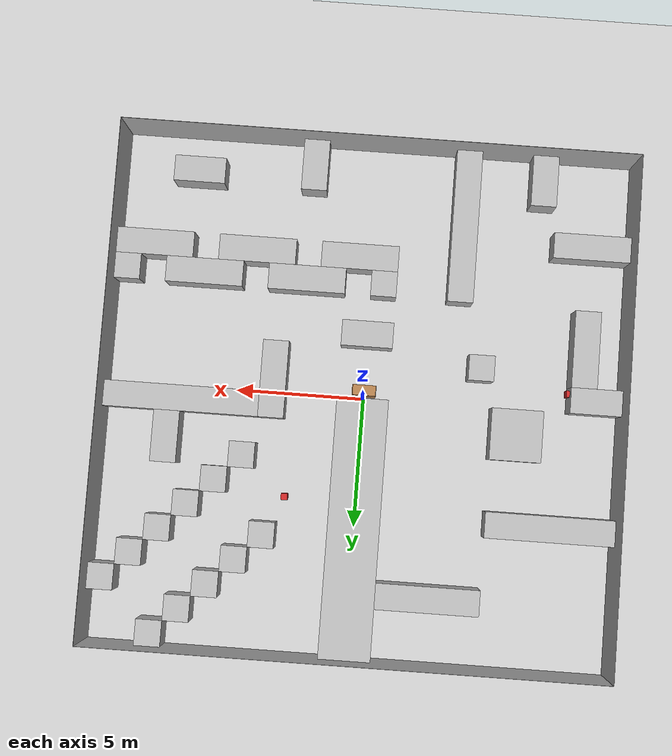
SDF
<sdf version="1.7">
 <world name="default">
  <physics type="ode">
   <max_step_size>0.001</max_step_size>
   <real_time_factor>1</real_time_factor>
   <real_time_update_rate>1000</real_time_update_rate>
  </physics>
  <light name="sun" type="directional">
   <pose>0 0 10 0 -0 0</pose>
   <diffuse>0.8 0.8 0.8 1</diffuse>
   <specular>0.2 0.2 0.2 1</specular>
   <attenuation>
    <range>1000</range>
    <constant>0.9</constant>
    <linear>0.01</linear>
    <quadratic>0.001</quadratic>
   </attenuation>
   <direction>-0.5 0.1 -0.9</direction>
   <spot><inner_angle>0</inner_angle><outer_angle>0</outer_angle><falloff>0</falloff></spot>
  </light>
  <gravity>0 0 -9.8</gravity>
  <magnetic_field>6e-06 2.3e-05 -4.2e-05</magnetic_field>
  <atmosphere type="adiabatic"/>
  <scene><ambient>0.4 0.4 0.4 1</ambient><background>0.7 0.7 0.7 1</background><shadows>1</shadows></scene>
  <model name="ground_plane">
   <static>1</static>
   <link name="link">
    <collision name="collision">
     <geometry><plane><normal>0 0 1</normal><size>100 100</size></plane></geometry>
    </collision>
    <visual name="visual">
     <geometry><plane><normal>0 0 1</normal><size>100 100</size></plane></geometry>
     <material>
      <ambient>0.8 0.8 0.8 1</ambient>
      <diffuse>0.8 0.8 0.8 1</diffuse>
      <specular>0.8 0.8 0.8 1</specular>
     </material>
     <plugin name="__default__" filename="__default__"/>
    </visual>
   </link>
   <plugin name="__default__" filename="__default__"/>
  </model>
  <include><uri>model://moving_box</uri><name>moving_box_1</name><pose>-8.0 -0.75 0.5 0 0 0</pose></include>
  <include><uri>model://moving_box_2</uri><name>moving_box_2</name><pose>2.75 4.0 0.5 0 0 0</pose></include>
  <model name="border">
   <pose>0 0 1 0 -0 0</pose>
   <static>1</static>
   <link name="wall1">
    <pose>-10.005 0 0 0 -0 0</pose>
    <collision name="wall1_collision"><geometry><box><size>0.01 20 2</size></box></geometry></collision>
    <visual name="wall1_visual"><geometry><box><size>0.01 20 2</size></box></geometry></visual>
    <static>1</static>
   </link>
   <link name="wall2">
    <pose>10.005 0 0 0 -0 0</pose>
    <collision name="wall2_collision"><geometry><box><size>0.01 20 2</size></box></geometry></collision>
    <visual name="wall2_visual"><geometry><box><size>0.01 20 2</size></box></geometry></visual>
    <static>1</static>
   </link>
   <link name="wall3">
    <pose>0 10.005 0 0 -0 0</pose>
    <collision name="wall3_collision"><geometry><box><size>20 0.01 2</size></box></geometry></collision>
    <visual name="wall3_visual"><geometry><box><size>20 0.01 2</size></box></geometry></visual>
    <static>1</static>
   </link>
   <link name="wall4">
    <pose>0 -10.005 0 0 -0 0</pose>
    <collision name="wall4_collision"><geometry><box><size>20 0.01 2</size></box></geometry></collision>
    <visual name="wall4_visual"><geometry><box><size>20 0.01 2</size></box></geometry></visual>
    <static>1</static>
   </link>
  </model>
  <model name="obstacles">
   <pose>0 0 0.5 0 -0 0</pose>
   <static>1</static>
   <link name="wall1">
    <pose>-6.5 -9 0 0 -0 0</pose>
    <collision name="wall1_collision"><geometry><box><size>1 2 1</size></box></geometry></collision>
    <visual name="wall1_visual"><geometry><box><size>1 2 1</size></box></geometry></visual>
    <static>1</static>
   </link>
   <link name="wall2">
    <pose>-8.5 -6.5 0 0 -0 0</pose>
    <collision name="wall2_collision"><geometry><box><size>3 1 1</size></box></geometry></collision>
    <visual name="wall2_visual"><geometry><box><size>3 1 1</size></box></geometry></visual>
    <static>1</static>
   </link>
   <link name="wall3">
    <pose>-3.5 -7 0 0 -0 0</pose>
    <collision name="wall3_collision"><geometry><box><size>1 6 1</size></box></geometry></collision>
    <visual name="wall3_visual"><geometry><box><size>1 6 1</size></box></geometry></visual>
    <static>1</static>
   </link>
   <link name="wall4">
    <pose>2.5 -9 0 0 -0 0</pose>
    <collision name="wall4_collision"><geometry><box><size>1 2 1</size></box></geometry></collision>
    <visual name="wall4_visual"><geometry><box><size>1 2 1</size></box></geometry></visual>
    <static>1</static>
   </link>
   <link name="wall5">
    <pose>7 -8.5 0 0 -0 0</pose>
    <collision name="wall5_collision"><geometry><box><size>2 1 1</size></box></geometry></collision>
    <visual name="wall5_visual"><geometry><box><size>2 1 1</size></box></geometry></visual>
    <static>1</static>
   </link>
   <link name="wall6">
    <pose>-9 -0.5 0 0 -0 0</pose>
    <collision name="wall6_collision"><geometry><box><size>2 1 1</size></box></geometry></collision>
    <visual name="wall6_visual"><geometry><box><size>2 1 1</size></box></geometry></visual>
    <static>1</static>
   </link>
   <link name="wall7">
    <pose>-8.5 -2.5 0 0 -0 0</pose>
    <collision name="wall7_collision"><geometry><box><size>1 3 1</size></box></geometry></collision>
    <visual name="wall7_visual"><geometry><box><size>1 3 1</size></box></geometry></visual>
    <static>1</static>
   </link>
   <link name="wall8">
    <pose>-4.5 -1.5 0 0 -0 0</pose>
    <collision name="wall8_collision"><geometry><box><size>1 1 1</size></box></geometry></collision>
    <visual name="wall8_visual"><geometry><box><size>1 1 1</size></box></geometry></visual>
    <static>1</static>
   </link>
   <link name="wall9">
    <pose>-6 1 0 0 -0 0</pose>
    <collision name="wall9_collision"><geometry><box><size>2 2 1</size></box></geometry></collision>
    <visual name="wall9_visual"><geometry><box><size>2 2 1</size></box></geometry></visual>
    <static>1</static>
   </link>
   <link name="wall10">
    <pose>-7.5 4.5 0 0 -0 0</pose>
    <collision name="wall10_collision"><geometry><box><size>5 1 1</size></box></geometry></collision>
    <visual name="wall10_visual"><geometry><box><size>5 1 1</size></box></geometry></visual>
    <static>1</static>
   </link>
   <link name="wall11">
    <pose>-3 7.5 0 0 -0 0</pose>
    <collision name="wall11_collision"><geometry><box><size>4 1 1</size></box></geometry></collision>
    <visual name="wall11_visual"><geometry><box><size>4 1 1</size></box></geometry></visual>
    <static>1</static>
   </link>
   <link name="wall12">
    <pose>0 5 0 0 -0 0</pose>
    <collision name="wall12_collision"><geometry><box><size>2 10 1</size></box></geometry></collision>
    <visual name="wall12_visual"><geometry><box><size>2 10 1</size></box></geometry></visual>
    <static>1</static>
   </link>
   <link name="wall13">
    <pose>0 -2.5 0 0 -0 0</pose>
    <collision name="wall13_collision"><geometry><box><size>2 1 1</size></box></geometry></collision>
    <visual name="wall13_visual"><geometry><box><size>2 1 1</size></box></geometry></visual>
    <static>1</static>
   </link>
   <link name="wall15">
    <pose>-0.5 -4.5 0 0 -0 0</pose>
    <collision name="wall15_collision"><geometry><box><size>1 1 1</size></box></geometry></collision>
    <visual name="wall15_visual"><geometry><box><size>1 1 1</size></box></geometry></visual>
    <static>1</static>
   </link>
   <link name="wall16">
    <pose>0.5 -5.5 0 0 -0 0</pose>
    <collision name="wall16_collision"><geometry><box><size>3 1 1</size></box></geometry></collision>
    <visual name="wall16_visual"><geometry><box><size>3 1 1</size></box></geometry></visual>
    <static>1</static>
   </link>
   <link name="wall17">
    <pose>2.5 -4.5 0 0 -0 0</pose>
    <collision name="wall17_collision"><geometry><box><size>3 1 1</size></box></geometry></collision>
    <visual name="wall17_visual"><geometry><box><size>3 1 1</size></box></geometry></visual>
    <static>1</static>
   </link>
   <link name="wall18">
    <pose>4.5 -5.5 0 0 -0 0</pose>
    <collision name="wall18_collision"><geometry><box><size>3 1 1</size></box></geometry></collision>
    <visual name="wall18_visual"><geometry><box><size>3 1 1</size></box></geometry></visual>
    <static>1</static>
   </link>
   <link name="wall19">
    <pose>6.5 -4.5 0 0 -0 0</pose>
    <collision name="wall19_collision"><geometry><box><size>3 1 1</size></box></geometry></collision>
    <visual name="wall19_visual"><geometry><box><size>3 1 1</size></box></geometry></visual>
    <static>1</static>
   </link>
   <link name="wall20">
    <pose>8.5 -5.5 0 0 -0 0</pose>
    <collision name="wall20_collision"><geometry><box><size>3 1 1</size></box></geometry></collision>
    <visual name="wall20_visual"><geometry><box><size>3 1 1</size></box></geometry></visual>
    <static>1</static>
   </link>
   <link name="wall21">
    <pose>9.5 -4.5 0 0 -0 0</pose>
    <collision name="wall21_collision"><geometry><box><size>1 1 1</size></box></geometry></collision>
    <visual name="wall21_visual"><geometry><box><size>1 1 1</size></box></geometry></visual>
    <static>1</static>
   </link>
   <link name="wall22">
    <pose>3.5 -0.5 0 0 -0 0</pose>
    <collision name="wall22_collision"><geometry><box><size>1 3 1</size></box></geometry></collision>
    <visual name="wall22_visual"><geometry><box><size>1 3 1</size></box></geometry></visual>
    <static>1</static>
   </link>
   <link name="wall23">
    <pose>7 0.5 0 0 -0 0</pose>
    <collision name="wall23_collision"><geometry><box><size>6 1 1</size></box></geometry></collision>
    <visual name="wall23_visual"><geometry><box><size>6 1 1</size></box></geometry></visual>
    <static>1</static>
   </link>
   <link name="wall24">
    <pose>7.5 2 0 0 -0 0</pose>
    <collision name="wall24_collision"><geometry><box><size>1 2 1</size></box></geometry></collision>
    <visual name="wall24_visual"><geometry><box><size>1 2 1</size></box></geometry></visual>
    <static>1</static>
   </link>
   <link name="wall27">
    <pose>3.5 5.5 0 0 -0 0</pose>
    <collision name="wall27_collision"><geometry><box><size>1 1 1</size></box></geometry></collision>
    <visual name="wall27_visual"><geometry><box><size>1 1 1</size></box></geometry></visual>
    <static>1</static>
   </link>
   <link name="wall28">
    <pose>4.5 6.5 0 0 -0 0</pose>
    <collision name="wall28_collision"><geometry><box><size>1 1 1</size></box></geometry></collision>
    <visual name="wall28_visual"><geometry><box><size>1 1 1</size></box></geometry></visual>
    <static>1</static>
   </link>
   <link name="wall29">
    <pose>5.5 7.5 0 0 -0 0</pose>
    <collision name="wall29_collision"><geometry><box><size>1 1 1</size></box></geometry></collision>
    <visual name="wall29_visual"><geometry><box><size>1 1 1</size></box></geometry></visual>
    <static>1</static>
   </link>
   <link name="wall30">
    <pose>6.5 8.5 0 0 -0 0</pose>
    <collision name="wall30_collision"><geometry><box><size>1 1 1</size></box></geometry></collision>
    <visual name="wall30_visual"><geometry><box><size>1 1 1</size></box></geometry></visual>
    <static>1</static>
   </link>
   <link name="wall31">
    <pose>7.5 9.5 0 0 -0 0</pose>
    <collision name="wall31_collision"><geometry><box><size>1 1 1</size></box></geometry></collision>
    <visual name="wall31_visual"><geometry><box><size>1 1 1</size></box></geometry></visual>
    <static>1</static>
   </link>
   <link name="wall32">
    <pose>4.5 2.5 0 0 -0 0</pose>
    <collision name="wall32_collision"><geometry><box><size>1 1 1</size></box></geometry></collision>
    <visual name="wall32_visual"><geometry><box><size>1 1 1</size></box></geometry></visual>
    <static>1</static>
   </link>
   <link name="wall33">
    <pose>5.5 3.5 0 0 -0 0</pose>
    <collision name="wall33_collision"><geometry><box><size>1 1 1</size></box></geometry></collision>
    <visual name="wall33_visual"><geometry><box><size>1 1 1</size></box></geometry></visual>
    <static>1</static>
   </link>
   <link name="wall34">
    <pose>6.5 4.5 0 0 -0 0</pose>
    <collision name="wall34_collision"><geometry><box><size>1 1 1</size></box></geometry></collision>
    <visual name="wall34_visual"><geometry><box><size>1 1 1</size></box></geometry></visual>
    <static>1</static>
   </link>
   <link name="wall35">
    <pose>7.5 5.5 0 0 -0 0</pose>
    <collision name="wall35_collision"><geometry><box><size>1 1 1</size></box></geometry></collision>
    <visual name="wall35_visual"><geometry><box><size>1 1 1</size></box></geometry></visual>
    <static>1</static>
   </link>
   <link name="wall36">
    <pose>8.5 6.5 0 0 -0 0</pose>
    <collision name="wall36_collision"><geometry><box><size>1 1 1</size></box></geometry></collision>
    <visual name="wall36_visual"><geometry><box><size>1 1 1</size></box></geometry></visual>
    <static>1</static>
   </link>
   <link name="wall37">
    <pose>9.5 7.5 0 0 -0 0</pose>
    <collision name="wall37_collision"><geometry><box><size>1 1 1</size></box></geometry></collision>
    <visual name="wall37_visual"><geometry><box><size>1 1 1</size></box></geometry></visual>
    <static>1</static>
   </link>
  </model>
  <audio><device>default</device></audio>
  <spherical_coordinates>
   <surface_model>EARTH_WGS84</surface_model>
   <latitude_deg>0</latitude_deg>
   <longitude_deg>0</longitude_deg>
   <elevation>0</elevation>
   <heading_deg>0</heading_deg>
  </spherical_coordinates>
  <model name="bookshelf">
   <static>1</static>
   <link name="link">
    <inertial><mass>1</mass></inertial>
    <collision name="back">
     <pose>0 0.005 0.6 0 -0 0</pose>
     <geometry><box><size>0.9 0.01 1.2</size></box></geometry>
    </collision>
    <visual name="visual1">
     <pose>0 0.005 0.6 0 -0 0</pose>
     <geometry><box><size>0.9 0.01 1.2</size></box></geometry>
     <material>
      <script><uri>file://media/materials/scripts/gazebo.material</uri><name>Gazebo/Wood</name></script>
     </material>
    </visual>
    <collision name="left_side">
     <pose>0.45 -0.195 0.6 0 -0 0</pose>
     <geometry><box><size>0.02 0.4 1.2</size></box></geometry>
    </collision>
    <visual name="visual2">
     <pose>0.45 -0.195 0.6 0 -0 0</pose>
     <geometry><box><size>0.02 0.4 1.2</size></box></geometry>
     <material>
      <script><uri>file://media/materials/scripts/gazebo.material</uri><name>Gazebo/Wood</name></script>
     </material>
    </visual>
    <collision name="right_side">
     <pose>-0.45 -0.195 0.6 0 -0 0</pose>
     <geometry><box><size>0.02 0.4 1.2</size></box></geometry>
    </collision>
    <visual name="visual3">
     <pose>-0.45 -0.195 0.6 0 -0 0</pose>
     <geometry><box><size>0.02 0.4 1.2</size></box></geometry>
     <material>
      <script><uri>file://media/materials/scripts/gazebo.material</uri><name>Gazebo/Wood</name></script>
     </material>
    </visual>
    <collision name="bottom">
     <pose>0 -0.195 0.03 0 -0 0</pose>
     <geometry><box><size>0.88 0.4 0.06</size></box></geometry>
    </collision>
    <visual name="visual4">
     <pose>0 -0.195 0.03 0 -0 0</pose>
     <geometry><box><size>0.88 0.4 0.06</size></box></geometry>
     <material>
      <script><uri>file://media/materials/scripts/gazebo.material</uri><name>Gazebo/Wood</name></script>
     </material>
    </visual>
    <collision name="top">
     <pose>0 -0.195 1.19 0 -0 0</pose>
     <geometry><box><size>0.88 0.4 0.02</size></box></geometry>
    </collision>
    <visual name="visual5">
     <pose>0 -0.195 1.19 0 -0 0</pose>
     <geometry><box><size>0.88 0.4 0.02</size></box></geometry>
     <material>
      <script><uri>file://media/materials/scripts/gazebo.material</uri><name>Gazebo/Wood</name></script>
     </material>
    </visual>
    <collision name="low_shelf">
     <pose>0 -0.195 0.43 0 -0 0</pose>
     <geometry><box><size>0.88 0.4 0.02</size></box></geometry>
    </collision>
    <visual name="visual6">
     <pose>0 -0.195 0.43 0 -0 0</pose>
     <geometry><box><size>0.88 0.4 0.02</size></box></geometry>
     <material>
      <script><uri>file://media/materials/scripts/gazebo.material</uri><name>Gazebo/Wood</name></script>
     </material>
    </visual>
    <collision name="high_shelf">
     <pose>0 -0.195 0.8 0 -0 0</pose>
     <geometry><box><size>0.88 0.4 0.02</size></box></geometry>
    </collision>
    <visual name="visual7">
     <pose>0 -0.195 0.8 0 -0 0</pose>
     <geometry><box><size>0.88 0.4 0.02</size></box></geometry>
     <material>
      <script><uri>file://media/materials/scripts/gazebo.material</uri><name>Gazebo/Wood</name></script>
     </material>
    </visual>
   </link>
   <pose>-0.028773 -0.098611 0 0 -0 0</pose>
  </model>
 </world>
</sdf>

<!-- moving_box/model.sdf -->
<sdf version="1.6">
  <model name="moving_box">
    <pose>0 0 0.501 0 0 0</pose>

    <link name="link">
      <inertial>
        <mass>50.0</mass>
        <inertia>
          <ixx>8.333</ixx> <ixy>0</ixy> <ixz>0</ixz>
          <iyy>8.333</iyy> <iyz>0</iyz> <izz>8.333</izz>
        </inertia>
      </inertial>

      <visual name="visual">
        <geometry><box><size>0.25 0.25 0.5</size></box></geometry>
        <material>
          <script>
            <uri>file://media/materials/scripts/gazebo.material</uri>
            <name>Gazebo/Red</name>
          </script>
        </material>
      </visual>

      <collision name="collision">
        <geometry><box><size>0.25 0.25 0.5</size></box></geometry>

        <surface>
          <friction>
            <ode>
              <mu>0.0</mu>    <mu2>0.0</mu2>  <slip1>1.0</slip1> <slip2>1.0</slip2>
            </ode>
          </friction>
          <contact>
             <ode>
               <kp>10000000.0</kp> <kd>1.0</kd>        </ode>
          </contact>
        </surface>
        </collision>
    </link>

    <plugin name="object_controller" filename="libgazebo_ros_planar_move.so">
      <ros>
        <namespace>/obstacle1</namespace> <remapping>cmd_vel:=cmd_vel</remapping>
        <remapping>odom:=odom</remapping>
      </ros>
      <update_rate>100</update_rate>
      <publish_odom>true</publish_odom>
      <robot_base_frame>link</robot_base_frame>
    </plugin>
  </model>
</sdf>

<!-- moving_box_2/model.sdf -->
<sdf version="1.6">
  <model name="moving_box">
    <pose>0 0 0.501 0 0 0</pose>

    <link name="link">
      <inertial>
        <mass>50.0</mass>
        <inertia>
          <ixx>8.333</ixx> <ixy>0</ixy> <ixz>0</ixz>
          <iyy>8.333</iyy> <iyz>0</iyz> <izz>8.333</izz>
        </inertia>
      </inertial>

      <visual name="visual">
        <geometry><box><size>0.25 0.25 0.5</size></box></geometry>
        <material>
          <script>
            <uri>file://media/materials/scripts/gazebo.material</uri>
            <name>Gazebo/Red</name>
          </script>
        </material>
      </visual>

      <collision name="collision">
        <geometry><box><size>0.25 0.25 0.5</size></box></geometry>

        <surface>
          <friction>
            <ode>
              <mu>0.0</mu>    <mu2>0.0</mu2>  <slip1>1.0</slip1> <slip2>1.0</slip2>
            </ode>
          </friction>
          <contact>
             <ode>
               <kp>10000000.0</kp> <kd>1.0</kd>        </ode>
          </contact>
        </surface>
        </collision>
    </link>

    <plugin name="object_controller" filename="libgazebo_ros_planar_move.so">
      <ros>
        <namespace>/obstacle2</namespace> <remapping>cmd_vel:=cmd_vel</remapping>
        <remapping>odom:=odom</remapping>
      </ros>
      <update_rate>100</update_rate>
      <publish_odom>true</publish_odom>
      <robot_base_frame>link</robot_base_frame>
    </plugin>
  </model>
</sdf>
